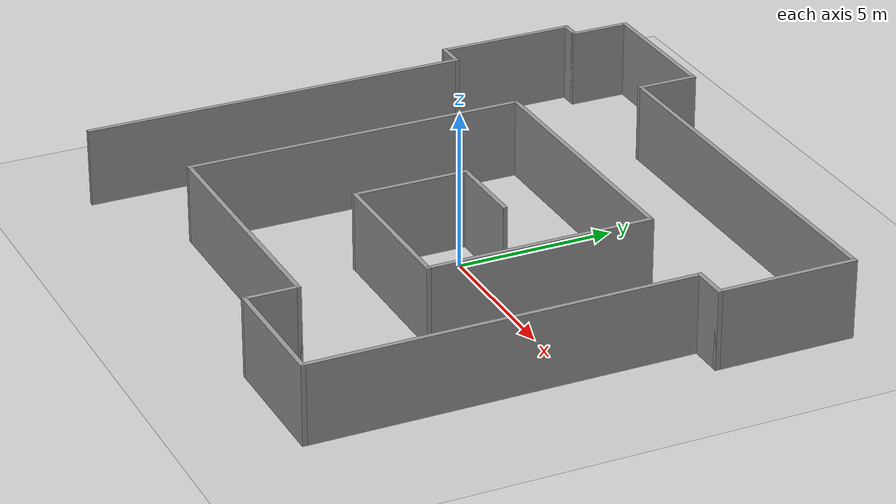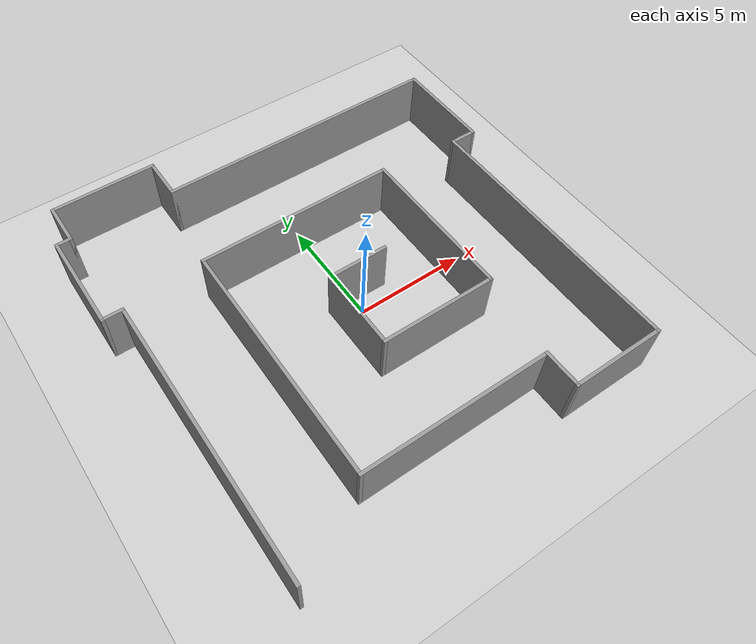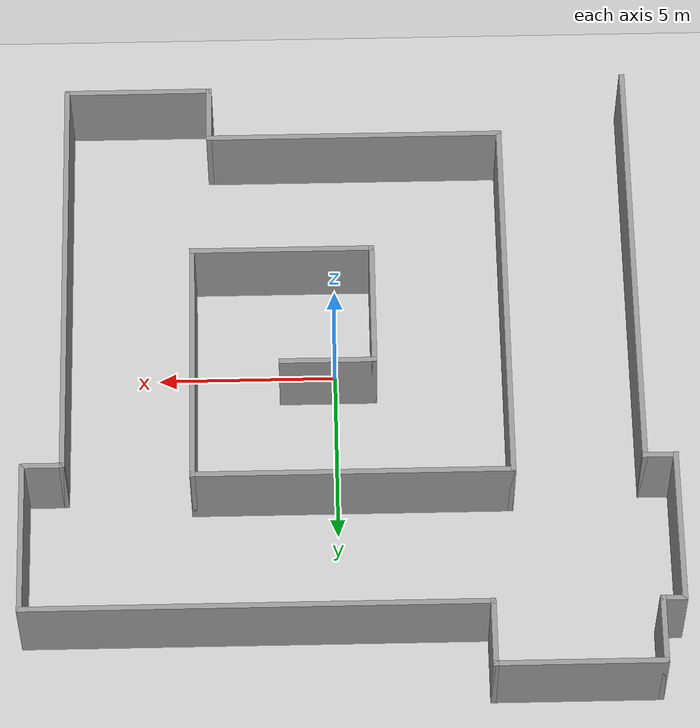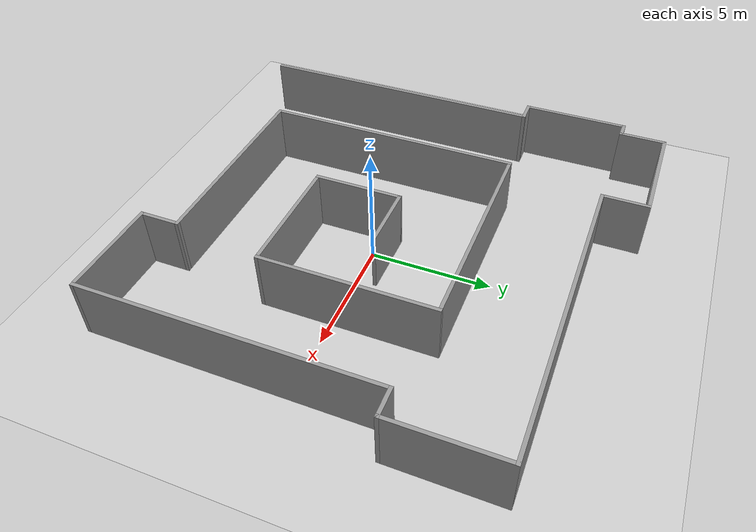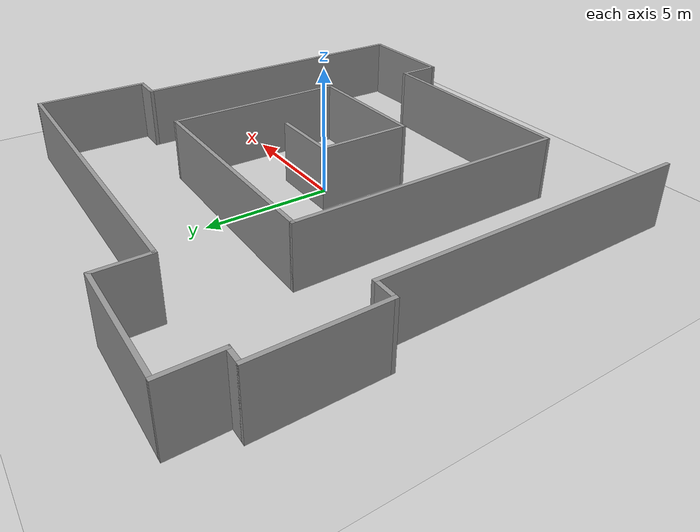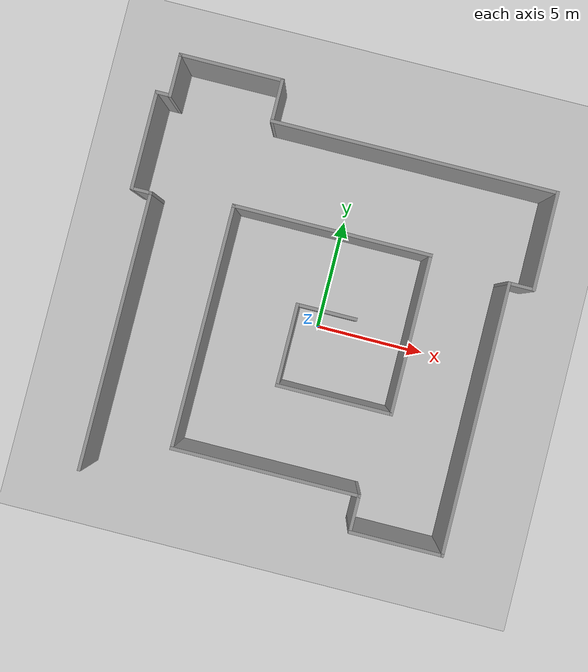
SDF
<sdf version="1.7">
 <world name="default">
  <light name="sun" type="directional">
   <pose>0 0 10 0 -0 0</pose>
   <diffuse>0.8 0.8 0.8 1</diffuse>
   <specular>0.2 0.2 0.2 1</specular>
   <attenuation>
    <range>1000</range>
    <constant>0.9</constant>
    <linear>0.01</linear>
    <quadratic>0.001</quadratic>
   </attenuation>
   <direction>-0.5 0.1 -0.9</direction>
   <spot><inner_angle>0</inner_angle><outer_angle>0</outer_angle><falloff>0</falloff></spot>
  </light>
  <model name="ground_plane">
   <static>1</static>
   <link name="link">
    <collision name="collision">
     <geometry><plane><normal>0 0 1</normal><size>100 100</size></plane></geometry>
     <surface><friction><ode><mu>100</mu><mu2>50</mu2></ode></friction></surface>
    </collision>
    <visual name="visual">
     <cast_shadows>0</cast_shadows>
     <geometry><plane><normal>0 0 1</normal><size>100 100</size></plane></geometry>
     <material>
      <script><uri>file://media/materials/scripts/gazebo.material</uri><name>Gazebo/Grey</name></script>
     </material>
    </visual>
   </link>
  </model>
  <gravity>0 0 -9.8</gravity>
  <magnetic_field>6e-06 2.3e-05 -4.2e-05</magnetic_field>
  <atmosphere type="adiabatic"/>
  <physics type="ode">
   <max_step_size>0.001</max_step_size>
   <real_time_factor>1</real_time_factor>
   <real_time_update_rate>1000</real_time_update_rate>
  </physics>
  <scene><ambient>0.4 0.4 0.4 1</ambient><background>0.7 0.7 0.7 1</background><shadows>1</shadows></scene>
  <audio><device>default</device></audio>
  <spherical_coordinates>
   <surface_model>EARTH_WGS84</surface_model>
   <latitude_deg>0</latitude_deg>
   <longitude_deg>0</longitude_deg>
   <elevation>0</elevation>
   <heading_deg>0</heading_deg>
  </spherical_coordinates>
  <model name="map1-Scale2.5">
   <pose>-0.319645 0.800769 0 0 -0 0</pose>
   <link name="Wall_100">
    <collision name="Wall_100_Collision">
     <geometry><box><size>7.25 0.15 2.5</size></box></geometry>
     <pose>0 0 1.25 0 -0 0</pose>
    </collision>
    <visual name="Wall_100_Visual">
     <pose>0 0 1.25 0 -0 0</pose>
     <geometry><box><size>7.25 0.15 2.5</size></box></geometry>
     <material>
      <script><uri>file://media/materials/scripts/gazebo.material</uri><name>Gazebo/Grey</name></script>
      <ambient>1 1 1 1</ambient>
     </material>
     <meta><layer>0</layer></meta>
    </visual>
    <pose>4.325 -0.125 0 0 -0 -1.5708</pose>
   </link>
   <link name="Wall_101">
    <collision name="Wall_101_Collision">
     <geometry><box><size>5.25 0.15 2.5</size></box></geometry>
     <pose>0 0 1.25 0 -0 0</pose>
    </collision>
    <visual name="Wall_101_Visual">
     <pose>0 0 1.25 0 -0 0</pose>
     <geometry><box><size>5.25 0.15 2.5</size></box></geometry>
     <material>
      <script><uri>file://media/materials/scripts/gazebo.material</uri><name>Gazebo/Grey</name></script>
      <ambient>1 1 1 1</ambient>
     </material>
     <meta><layer>0</layer></meta>
    </visual>
    <pose>1.775 -3.675 0 0 -0 3.14159</pose>
   </link>
   <link name="Wall_102">
    <collision name="Wall_102_Collision">
     <geometry><box><size>3.75 0.15 2.5</size></box></geometry>
     <pose>0 0 1.25 0 -0 0</pose>
    </collision>
    <visual name="Wall_102_Visual">
     <pose>0 0 1.25 0 -0 0</pose>
     <geometry><box><size>3.75 0.15 2.5</size></box></geometry>
     <material>
      <script><uri>file://media/materials/scripts/gazebo.material</uri><name>Gazebo/Grey</name></script>
      <ambient>1 1 1 1</ambient>
     </material>
     <meta><layer>0</layer></meta>
    </visual>
    <pose>-0.775 -1.875 0 0 -0 1.5708</pose>
   </link>
   <link name="Wall_103">
    <collision name="Wall_103_Collision">
     <geometry><box><size>2.75 0.15 2.5</size></box></geometry>
     <pose>0 0 1.25 0 -0 0</pose>
    </collision>
    <visual name="Wall_103_Visual">
     <pose>0 0 1.25 0 -0 0</pose>
     <geometry><box><size>2.75 0.15 2.5</size></box></geometry>
     <material>
      <script><uri>file://media/materials/scripts/gazebo.material</uri><name>Gazebo/Grey</name></script>
      <ambient>1 1 1 1</ambient>
     </material>
     <meta><layer>0</layer></meta>
    </visual>
    <pose>0.525 -0.075 0 0 -0 0</pose>
   </link>
   <link name="Wall_84">
    <collision name="Wall_84_Collision">
     <geometry><box><size>12.5 0.15 2.5</size></box></geometry>
     <pose>0 0 1.25 0 -0 0</pose>
    </collision>
    <visual name="Wall_84_Visual">
     <pose>0 0 1.25 0 -0 0</pose>
     <geometry><box><size>12.5 0.15 2.5</size></box></geometry>
     <material>
      <script><uri>file://media/materials/scripts/gazebo.material</uri><name>Gazebo/Grey</name></script>
      <ambient>1 1 1 1</ambient>
     </material>
     <meta><layer>0</layer></meta>
    </visual>
    <pose>-8.175 -3.1 0 0 -0 1.5708</pose>
   </link>
   <link name="Wall_85">
    <collision name="Wall_85_Collision">
     <geometry><box><size>1 0.15 2.5</size></box></geometry>
     <pose>0 0 1.25 0 -0 0</pose>
    </collision>
    <visual name="Wall_85_Visual">
     <pose>0 0 1.25 0 -0 0</pose>
     <geometry><box><size>1 0.15 2.5</size></box></geometry>
     <material>
      <script><uri>file://media/materials/scripts/gazebo.material</uri><name>Gazebo/Grey</name></script>
      <ambient>1 1 1 1</ambient>
     </material>
     <meta><layer>0</layer></meta>
    </visual>
    <pose>-8.6 3.075 0 0 -0 3.14159</pose>
   </link>
   <link name="Wall_86">
    <collision name="Wall_86_Collision">
     <geometry><box><size>4.5 0.15 2.5</size></box></geometry>
     <pose>0 0 1.25 0 -0 0</pose>
    </collision>
    <visual name="Wall_86_Visual">
     <pose>0 0 1.25 0 -0 0</pose>
     <geometry><box><size>4.5 0.15 2.5</size></box></geometry>
     <material>
      <script><uri>file://media/materials/scripts/gazebo.material</uri><name>Gazebo/Grey</name></script>
      <ambient>1 1 1 1</ambient>
     </material>
     <meta><layer>0</layer></meta>
    </visual>
    <pose>-9.025 5.25 0 0 -0 1.5708</pose>
   </link>
   <link name="Wall_87">
    <collision name="Wall_87_Collision">
     <geometry><box><size>0.75 0.15 2.5</size></box></geometry>
     <pose>0 0 1.25 0 -0 0</pose>
    </collision>
    <visual name="Wall_87_Visual">
     <pose>0 0 1.25 0 -0 0</pose>
     <geometry><box><size>0.75 0.15 2.5</size></box></geometry>
     <material>
      <script><uri>file://media/materials/scripts/gazebo.material</uri><name>Gazebo/Grey</name></script>
      <ambient>1 1 1 1</ambient>
     </material>
     <meta><layer>0</layer></meta>
    </visual>
    <pose>-8.725 7.425 0 0 -0 0</pose>
   </link>
   <link name="Wall_88">
    <collision name="Wall_88_Collision">
     <geometry><box><size>2 0.15 2.5</size></box></geometry>
     <pose>0 0 1.25 0 -0 0</pose>
    </collision>
    <visual name="Wall_88_Visual">
     <pose>0 0 1.25 0 -0 0</pose>
     <geometry><box><size>2 0.15 2.5</size></box></geometry>
     <material>
      <script><uri>file://media/materials/scripts/gazebo.material</uri><name>Gazebo/Grey</name></script>
      <ambient>1 1 1 1</ambient>
     </material>
     <meta><layer>0</layer></meta>
    </visual>
    <pose>-8.425 8.35 0 0 -0 1.5708</pose>
   </link>
   <link name="Wall_89">
    <collision name="Wall_89_Collision">
     <geometry><box><size>4.75 0.15 2.5</size></box></geometry>
     <pose>0 0 1.25 0 -0 0</pose>
    </collision>
    <visual name="Wall_89_Visual">
     <pose>0 0 1.25 0 -0 0</pose>
     <geometry><box><size>4.75 0.15 2.5</size></box></geometry>
     <material>
      <script><uri>file://media/materials/scripts/gazebo.material</uri><name>Gazebo/Grey</name></script>
      <ambient>1 1 1 1</ambient>
     </material>
     <meta><layer>0</layer></meta>
    </visual>
    <pose>-6.125 9.275 0 0 -0 0</pose>
   </link>
   <link name="Wall_90">
    <collision name="Wall_90_Collision">
     <geometry><box><size>2 0.15 2.5</size></box></geometry>
     <pose>0 0 1.25 0 -0 0</pose>
    </collision>
    <visual name="Wall_90_Visual">
     <pose>0 0 1.25 0 -0 0</pose>
     <geometry><box><size>2 0.15 2.5</size></box></geometry>
     <material>
      <script><uri>file://media/materials/scripts/gazebo.material</uri><name>Gazebo/Grey</name></script>
      <ambient>1 1 1 1</ambient>
     </material>
     <meta><layer>0</layer></meta>
    </visual>
    <pose>-3.825 8.35 0 0 -0 -1.5708</pose>
   </link>
   <link name="Wall_91">
    <collision name="Wall_91_Collision">
     <geometry><box><size>13 0.15 2.5</size></box></geometry>
     <pose>0 0 1.25 0 -0 0</pose>
    </collision>
    <visual name="Wall_91_Visual">
     <pose>0 0 1.25 0 -0 0</pose>
     <geometry><box><size>13 0.15 2.5</size></box></geometry>
     <material>
      <script><uri>file://media/materials/scripts/gazebo.material</uri><name>Gazebo/Grey</name></script>
      <ambient>1 1 1 1</ambient>
     </material>
     <meta><layer>0</layer></meta>
    </visual>
    <pose>2.6 7.425 0 0 -0 0</pose>
   </link>
   <link name="Wall_92">
    <collision name="Wall_92_Collision">
     <geometry><box><size>4.5 0.15 2.5</size></box></geometry>
     <pose>0 0 1.25 0 -0 0</pose>
    </collision>
    <visual name="Wall_92_Visual">
     <pose>0 0 1.25 0 -0 0</pose>
     <geometry><box><size>4.5 0.15 2.5</size></box></geometry>
     <material>
      <script><uri>file://media/materials/scripts/gazebo.material</uri><name>Gazebo/Grey</name></script>
      <ambient>1 1 1 1</ambient>
     </material>
     <meta><layer>0</layer></meta>
    </visual>
    <pose>9.025 5.25 0 0 -0 -1.5708</pose>
   </link>
   <link name="Wall_93">
    <collision name="Wall_93_Collision">
     <geometry><box><size>1.25 0.15 2.5</size></box></geometry>
     <pose>0 0 1.25 0 -0 0</pose>
    </collision>
    <visual name="Wall_93_Visual">
     <pose>0 0 1.25 0 -0 0</pose>
     <geometry><box><size>1.25 0.15 2.5</size></box></geometry>
     <material>
      <script><uri>file://media/materials/scripts/gazebo.material</uri><name>Gazebo/Grey</name></script>
      <ambient>1 1 1 1</ambient>
     </material>
     <meta><layer>0</layer></meta>
    </visual>
    <pose>8.475 3.075 0 0 -0 3.14159</pose>
   </link>
   <link name="Wall_94">
    <collision name="Wall_94_Collision">
     <geometry><box><size>12.25 0.15 2.5</size></box></geometry>
     <pose>0 0 1.25 0 -0 0</pose>
    </collision>
    <visual name="Wall_94_Visual">
     <pose>0 0 1.25 0 -0 0</pose>
     <geometry><box><size>12.25 0.15 2.5</size></box></geometry>
     <material>
      <script><uri>file://media/materials/scripts/gazebo.material</uri><name>Gazebo/Grey</name></script>
      <ambient>1 1 1 1</ambient>
     </material>
     <meta><layer>0</layer></meta>
    </visual>
    <pose>7.925 -2.975 0 0 -0 -1.5708</pose>
   </link>
   <link name="Wall_95">
    <collision name="Wall_95_Collision">
     <geometry><box><size>4.25 0.15 2.5</size></box></geometry>
     <pose>0 0 1.25 0 -0 0</pose>
    </collision>
    <visual name="Wall_95_Visual">
     <pose>0 0 1.25 0 -0 0</pose>
     <geometry><box><size>4.25 0.15 2.5</size></box></geometry>
     <material>
      <script><uri>file://media/materials/scripts/gazebo.material</uri><name>Gazebo/Grey</name></script>
      <ambient>1 1 1 1</ambient>
     </material>
     <meta><layer>0</layer></meta>
    </visual>
    <pose>5.875 -9.025 0 0 -0 3.14159</pose>
   </link>
   <link name="Wall_96">
    <collision name="Wall_96_Collision">
     <geometry><box><size>1.75 0.15 2.5</size></box></geometry>
     <pose>0 0 1.25 0 -0 0</pose>
    </collision>
    <visual name="Wall_96_Visual">
     <pose>0 0 1.25 0 -0 0</pose>
     <geometry><box><size>1.75 0.15 2.5</size></box></geometry>
     <material>
      <script><uri>file://media/materials/scripts/gazebo.material</uri><name>Gazebo/Grey</name></script>
      <ambient>1 1 1 1</ambient>
     </material>
     <meta><layer>0</layer></meta>
    </visual>
    <pose>3.825 -8.225 0 0 -0 1.5708</pose>
   </link>
   <link name="Wall_97">
    <collision name="Wall_97_Collision">
     <geometry><box><size>8.5 0.15 2.5</size></box></geometry>
     <pose>0 0 1.25 0 -0 0</pose>
    </collision>
    <visual name="Wall_97_Visual">
     <pose>0 0 1.25 0 -0 0</pose>
     <geometry><box><size>8.5 0.15 2.5</size></box></geometry>
     <material>
      <script><uri>file://media/materials/scripts/gazebo.material</uri><name>Gazebo/Grey</name></script>
      <ambient>1 1 1 1</ambient>
     </material>
     <meta><layer>0</layer></meta>
    </visual>
    <pose>-0.35 -7.425 0 0 -0 3.14159</pose>
   </link>
   <link name="Wall_98">
    <collision name="Wall_98_Collision">
     <geometry><box><size>11 0.15 2.5</size></box></geometry>
     <pose>0 0 1.25 0 -0 0</pose>
    </collision>
    <visual name="Wall_98_Visual">
     <pose>0 0 1.25 0 -0 0</pose>
     <geometry><box><size>11 0.15 2.5</size></box></geometry>
     <material>
      <script><uri>file://media/materials/scripts/gazebo.material</uri><name>Gazebo/Grey</name></script>
      <ambient>1 1 1 1</ambient>
     </material>
     <meta><layer>0</layer></meta>
    </visual>
    <pose>-4.525 -2 0 0 -0 1.5708</pose>
   </link>
   <link name="Wall_99">
    <collision name="Wall_99_Collision">
     <geometry><box><size>9 0.15 2.5</size></box></geometry>
     <pose>0 0 1.25 0 -0 0</pose>
    </collision>
    <visual name="Wall_99_Visual">
     <pose>0 0 1.25 0 -0 0</pose>
     <geometry><box><size>9 0.15 2.5</size></box></geometry>
     <material>
      <script><uri>file://media/materials/scripts/gazebo.material</uri><name>Gazebo/Grey</name></script>
      <ambient>1 1 1 1</ambient>
     </material>
     <meta><layer>0</layer></meta>
    </visual>
    <pose>-0.1 3.425 0 0 -0 0</pose>
   </link>
   <static>1</static>
  </model>
  <plugin name="gazebo_ros_state" filename="libgazebo_ros_state.so">
   <ros><namespace>/gazebo</namespace></ros>
   <update_rate>1.0</update_rate>
  </plugin>
 </world>
</sdf>
